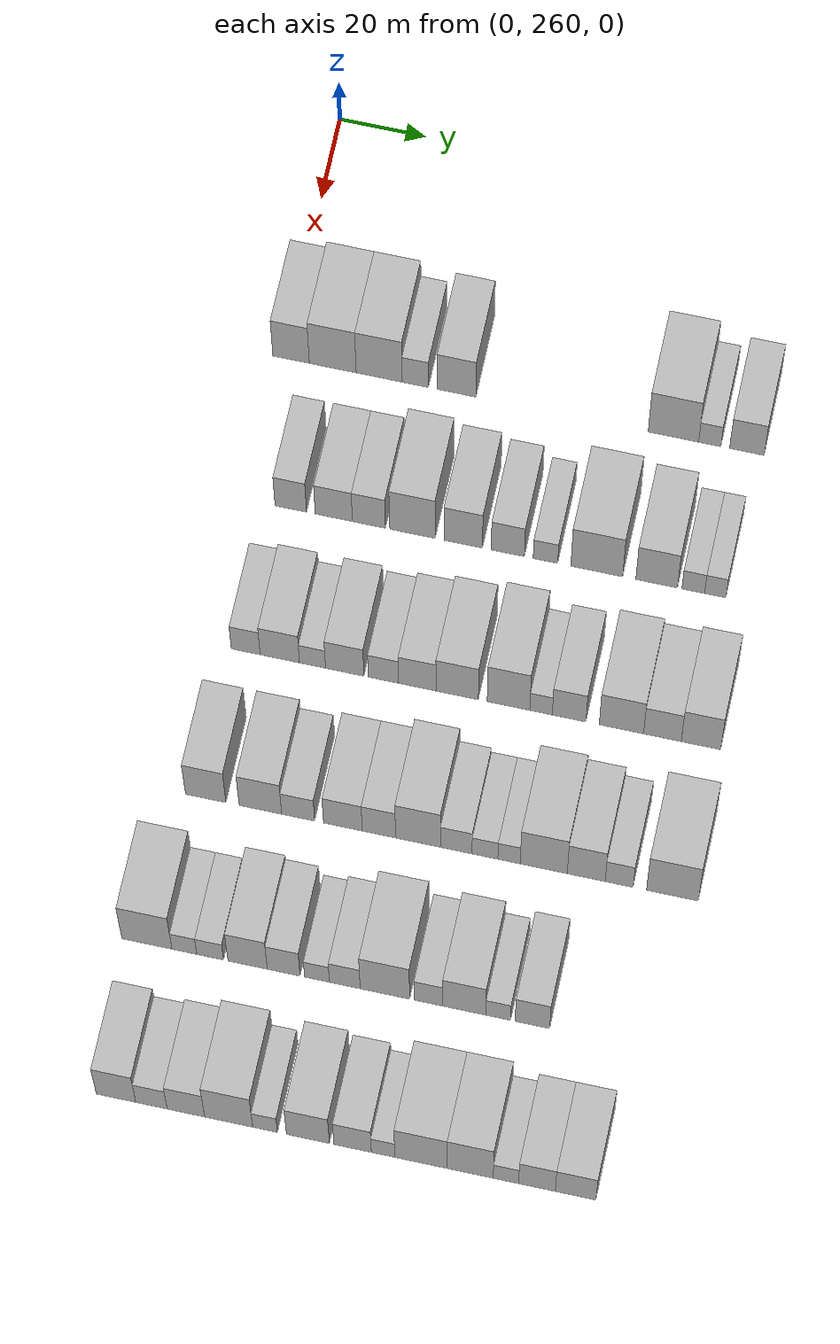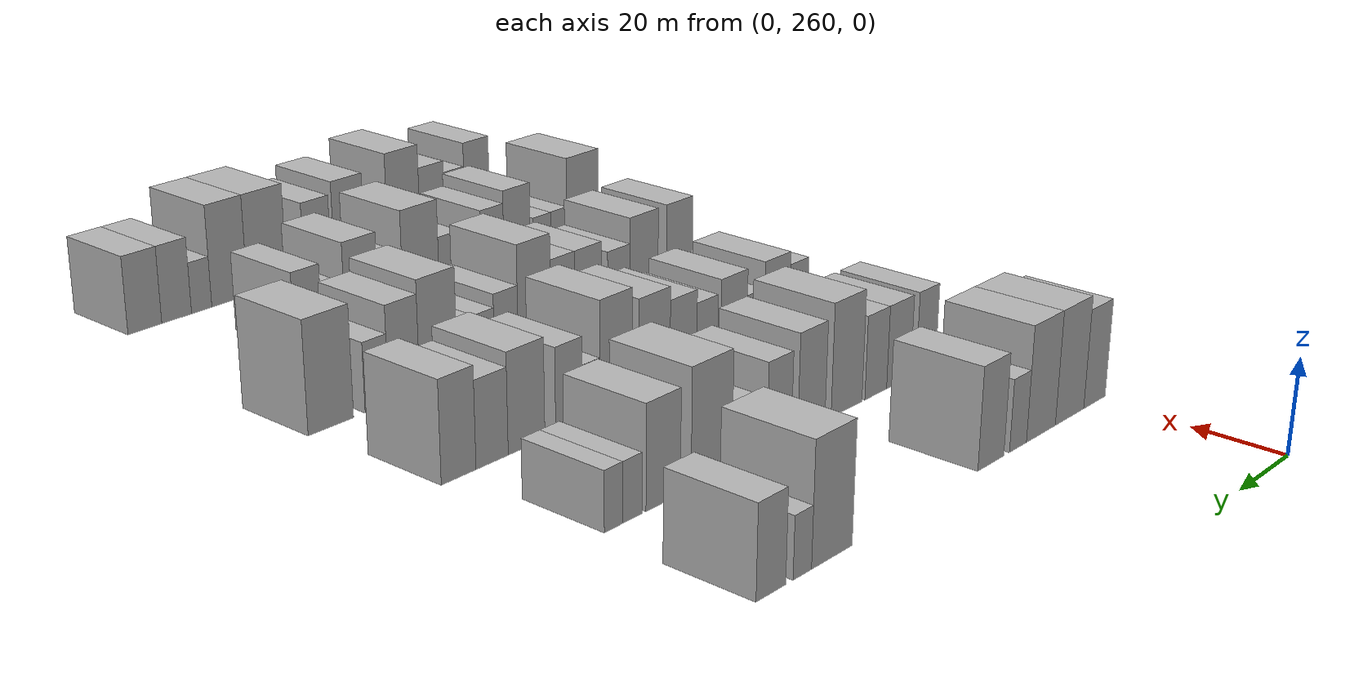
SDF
<sdf version="1.6">
 <world name="default">
  <model name="building_93">
   <static>1</static>
   <pose>50.0000 261.9925 0 0.000000 0.000000 0.000000</pose>
   <link name="link">
    <pose>0 0 10.50 0 0 0</pose>
    <collision name="collision"><geometry><box><size>20.0000 8.4311 21.0000</size></box></geometry></collision>
    <visual name="visual">
     <cast_shadows>0</cast_shadows>
     <geometry><box><size>20.0000 8.4311 21.0000</size></box></geometry>
     <material>
      <script>
       <uri>model://HANNAS_wall/materials/scripts</uri>
       <uri>model://HANNAS_wall/materials/textures</uri>
       <name>vrc/HANNAS_wall</name>
      </script>
     </material>
    </visual>
   </link>
  </model>
  <model name="building_94">
   <static>1</static>
   <pose>50.0000 271.6200 0 0.000000 0.000000 0.000000</pose>
   <link name="link">
    <pose>0 0 12.00 0 0 0</pose>
    <collision name="collision"><geometry><box><size>20.0000 10.8237 24.0000</size></box></geometry></collision>
    <visual name="visual">
     <cast_shadows>0</cast_shadows>
     <geometry><box><size>20.0000 10.8237 24.0000</size></box></geometry>
     <material>
      <script>
       <uri>model://HANNAS_wall/materials/scripts</uri>
       <uri>model://HANNAS_wall/materials/textures</uri>
       <name>vrc/HANNAS_wall</name>
      </script>
     </material>
    </visual>
   </link>
  </model>
  <model name="building_95">
   <static>1</static>
   <pose>50.0000 282.3498 0 0.000000 0.000000 0.000000</pose>
   <link name="link">
    <pose>0 0 12.00 0 0 0</pose>
    <collision name="collision"><geometry><box><size>20.0000 10.6359 24.0000</size></box></geometry></collision>
    <visual name="visual">
     <cast_shadows>0</cast_shadows>
     <geometry><box><size>20.0000 10.6359 24.0000</size></box></geometry>
     <material>
      <script>
       <uri>model://HANNAS_wall/materials/scripts</uri>
       <uri>model://HANNAS_wall/materials/textures</uri>
       <name>vrc/HANNAS_wall</name>
      </script>
     </material>
    </visual>
   </link>
  </model>
  <model name="building_96">
   <static>1</static>
   <pose>50.0000 290.6921 0 0.000000 0.000000 0.000000</pose>
   <link name="link">
    <pose>0 0 7.50 0 0 0</pose>
    <collision name="collision"><geometry><box><size>20.0000 6.0489 15.0000</size></box></geometry></collision>
    <visual name="visual">
     <cast_shadows>0</cast_shadows>
     <geometry><box><size>20.0000 6.0489 15.0000</size></box></geometry>
     <material>
      <script>
       <uri>model://HANNAS_wall/materials/scripts</uri>
       <uri>model://HANNAS_wall/materials/textures</uri>
       <name>vrc/HANNAS_wall</name>
      </script>
     </material>
    </visual>
   </link>
  </model>
  <model name="building_97">
   <static>1</static>
   <pose>50.0000 300.1921 0 0.000000 0.000000 0.000000</pose>
   <link name="link">
    <pose>0 0 10.50 0 0 0</pose>
    <collision name="collision"><geometry><box><size>20.0000 8.9510 21.0000</size></box></geometry></collision>
    <visual name="visual">
     <cast_shadows>0</cast_shadows>
     <geometry><box><size>20.0000 8.9510 21.0000</size></box></geometry>
     <material>
      <script>
       <uri>model://HANNAS_wall/materials/scripts</uri>
       <uri>model://HANNAS_wall/materials/textures</uri>
       <name>vrc/HANNAS_wall</name>
      </script>
     </material>
    </visual>
   </link>
  </model>
  <model name="building_98">
   <static>1</static>
   <pose>50.0000 350.0113 0 0.000000 0.000000 0.000000</pose>
   <link name="link">
    <pose>0 0 12.00 0 0 0</pose>
    <collision name="collision"><geometry><box><size>20.0000 11.5624 24.0000</size></box></geometry></collision>
    <visual name="visual">
     <cast_shadows>0</cast_shadows>
     <geometry><box><size>20.0000 11.5624 24.0000</size></box></geometry>
     <material>
      <script>
       <uri>model://HANNAS_wall/materials/scripts</uri>
       <uri>model://HANNAS_wall/materials/textures</uri>
       <name>vrc/HANNAS_wall</name>
      </script>
     </material>
    </visual>
   </link>
  </model>
  <model name="building_99">
   <static>1</static>
   <pose>50.0000 358.3322 0 0.000000 0.000000 0.000000</pose>
   <link name="link">
    <pose>0 0 6.00 0 0 0</pose>
    <collision name="collision"><geometry><box><size>20.0000 5.0795 12.0000</size></box></geometry></collision>
    <visual name="visual">
     <cast_shadows>0</cast_shadows>
     <geometry><box><size>20.0000 5.0795 12.0000</size></box></geometry>
     <material>
      <script>
       <uri>model://HANNAS_wall/materials/scripts</uri>
       <uri>model://HANNAS_wall/materials/textures</uri>
       <name>vrc/HANNAS_wall</name>
      </script>
     </material>
    </visual>
   </link>
  </model>
  <model name="building_100">
   <static>1</static>
   <pose>50.0000 366.8281 0 0.000000 0.000000 0.000000</pose>
   <link name="link">
    <pose>0 0 9.00 0 0 0</pose>
    <collision name="collision"><geometry><box><size>20.0000 7.9122 18.0000</size></box></geometry></collision>
    <visual name="visual">
     <cast_shadows>0</cast_shadows>
     <geometry><box><size>20.0000 7.9122 18.0000</size></box></geometry>
     <material>
      <script>
       <uri>model://HANNAS_wall/materials/scripts</uri>
       <uri>model://HANNAS_wall/materials/textures</uri>
       <name>vrc/HANNAS_wall</name>
      </script>
     </material>
    </visual>
   </link>
  </model>
  <model name="building_219">
   <static>1</static>
   <pose>85.0000 269.8615 0 0.000000 0.000000 0.000000</pose>
   <link name="link">
    <pose>0 0 9.00 0 0 0</pose>
    <collision name="collision"><geometry><box><size>20.0000 7.2115 18.0000</size></box></geometry></collision>
    <visual name="visual">
     <cast_shadows>0</cast_shadows>
     <geometry><box><size>20.0000 7.2115 18.0000</size></box></geometry>
     <material>
      <script>
       <uri>model://HANNAS_wall/materials/scripts</uri>
       <uri>model://HANNAS_wall/materials/textures</uri>
       <name>vrc/HANNAS_wall</name>
      </script>
     </material>
    </visual>
   </link>
  </model>
  <model name="building_220">
   <static>1</static>
   <pose>85.0000 279.7164 0 0.000000 0.000000 0.000000</pose>
   <link name="link">
    <pose>0 0 9.00 0 0 0</pose>
    <collision name="collision"><geometry><box><size>20.0000 8.4984 18.0000</size></box></geometry></collision>
    <visual name="visual">
     <cast_shadows>0</cast_shadows>
     <geometry><box><size>20.0000 8.4984 18.0000</size></box></geometry>
     <material>
      <script>
       <uri>model://HANNAS_wall/materials/scripts</uri>
       <uri>model://HANNAS_wall/materials/textures</uri>
       <name>vrc/HANNAS_wall</name>
      </script>
     </material>
    </visual>
   </link>
  </model>
  <model name="building_221">
   <static>1</static>
   <pose>85.0000 287.7463 0 0.000000 0.000000 0.000000</pose>
   <link name="link">
    <pose>0 0 9.00 0 0 0</pose>
    <collision name="collision"><geometry><box><size>20.0000 7.5613 18.0000</size></box></geometry></collision>
    <visual name="visual">
     <cast_shadows>0</cast_shadows>
     <geometry><box><size>20.0000 7.5613 18.0000</size></box></geometry>
     <material>
      <script>
       <uri>model://HANNAS_wall/materials/scripts</uri>
       <uri>model://HANNAS_wall/materials/textures</uri>
       <name>vrc/HANNAS_wall</name>
      </script>
     </material>
    </visual>
   </link>
  </model>
  <model name="building_222">
   <static>1</static>
   <pose>85.0000 297.7098 0 0.000000 0.000000 0.000000</pose>
   <link name="link">
    <pose>0 0 12.00 0 0 0</pose>
    <collision name="collision"><geometry><box><size>20.0000 10.3657 24.0000</size></box></geometry></collision>
    <visual name="visual">
     <cast_shadows>0</cast_shadows>
     <geometry><box><size>20.0000 10.3657 24.0000</size></box></geometry>
     <material>
      <script>
       <uri>model://HANNAS_wall/materials/scripts</uri>
       <uri>model://HANNAS_wall/materials/textures</uri>
       <name>vrc/HANNAS_wall</name>
      </script>
     </material>
    </visual>
   </link>
  </model>
  <model name="building_223">
   <static>1</static>
   <pose>85.0000 309.2843 0 0.000000 0.000000 0.000000</pose>
   <link name="link">
    <pose>0 0 10.50 0 0 0</pose>
    <collision name="collision"><geometry><box><size>20.0000 8.7832 21.0000</size></box></geometry></collision>
    <visual name="visual">
     <cast_shadows>0</cast_shadows>
     <geometry><box><size>20.0000 8.7832 21.0000</size></box></geometry>
     <material>
      <script>
       <uri>model://HANNAS_wall/materials/scripts</uri>
       <uri>model://HANNAS_wall/materials/textures</uri>
       <name>vrc/HANNAS_wall</name>
      </script>
     </material>
    </visual>
   </link>
  </model>
  <model name="building_224">
   <static>1</static>
   <pose>85.0000 319.4560 0 0.000000 0.000000 0.000000</pose>
   <link name="link">
    <pose>0 0 9.00 0 0 0</pose>
    <collision name="collision"><geometry><box><size>20.0000 7.5603 18.0000</size></box></geometry></collision>
    <visual name="visual">
     <cast_shadows>0</cast_shadows>
     <geometry><box><size>20.0000 7.5603 18.0000</size></box></geometry>
     <material>
      <script>
       <uri>model://HANNAS_wall/materials/scripts</uri>
       <uri>model://HANNAS_wall/materials/textures</uri>
       <name>vrc/HANNAS_wall</name>
      </script>
     </material>
    </visual>
   </link>
  </model>
  <model name="building_225">
   <static>1</static>
   <pose>85.0000 328.0286 0 0.000000 0.000000 0.000000</pose>
   <link name="link">
    <pose>0 0 6.00 0 0 0</pose>
    <collision name="collision"><geometry><box><size>20.0000 5.5848 12.0000</size></box></geometry></collision>
    <visual name="visual">
     <cast_shadows>0</cast_shadows>
     <geometry><box><size>20.0000 5.5848 12.0000</size></box></geometry>
     <material>
      <script>
       <uri>model://HANNAS_wall/materials/scripts</uri>
       <uri>model://HANNAS_wall/materials/textures</uri>
       <name>vrc/HANNAS_wall</name>
      </script>
     </material>
    </visual>
   </link>
  </model>
  <model name="building_226">
   <static>1</static>
   <pose>85.0000 339.7093 0 0.000000 0.000000 0.000000</pose>
   <link name="link">
    <pose>0 0 12.00 0 0 0</pose>
    <collision name="collision"><geometry><box><size>20.0000 11.7766 24.0000</size></box></geometry></collision>
    <visual name="visual">
     <cast_shadows>0</cast_shadows>
     <geometry><box><size>20.0000 11.7766 24.0000</size></box></geometry>
     <material>
      <script>
       <uri>model://HANNAS_wall/materials/scripts</uri>
       <uri>model://HANNAS_wall/materials/textures</uri>
       <name>vrc/HANNAS_wall</name>
      </script>
     </material>
    </visual>
   </link>
  </model>
  <model name="building_227">
   <static>1</static>
   <pose>85.0000 353.3235 0 0.000000 0.000000 0.000000</pose>
   <link name="link">
    <pose>0 0 10.50 0 0 0</pose>
    <collision name="collision"><geometry><box><size>20.0000 9.4518 21.0000</size></box></geometry></collision>
    <visual name="visual">
     <cast_shadows>0</cast_shadows>
     <geometry><box><size>20.0000 9.4518 21.0000</size></box></geometry>
     <material>
      <script>
       <uri>model://HANNAS_wall/materials/scripts</uri>
       <uri>model://HANNAS_wall/materials/textures</uri>
       <name>vrc/HANNAS_wall</name>
      </script>
     </material>
    </visual>
   </link>
  </model>
  <model name="building_228">
   <static>1</static>
   <pose>85.0000 361.6194 0 0.000000 0.000000 0.000000</pose>
   <link name="link">
    <pose>0 0 6.00 0 0 0</pose>
    <collision name="collision"><geometry><box><size>20.0000 5.1400 12.0000</size></box></geometry></collision>
    <visual name="visual">
     <cast_shadows>0</cast_shadows>
     <geometry><box><size>20.0000 5.1400 12.0000</size></box></geometry>
     <material>
      <script>
       <uri>model://HANNAS_wall/materials/scripts</uri>
       <uri>model://HANNAS_wall/materials/textures</uri>
       <name>vrc/HANNAS_wall</name>
      </script>
     </material>
    </visual>
   </link>
  </model>
  <model name="building_229">
   <static>1</static>
   <pose>85.0000 366.6081 0 0.000000 0.000000 0.000000</pose>
   <link name="link">
    <pose>0 0 6.00 0 0 0</pose>
    <collision name="collision"><geometry><box><size>20.0000 4.8375 12.0000</size></box></geometry></collision>
    <visual name="visual">
     <cast_shadows>0</cast_shadows>
     <geometry><box><size>20.0000 4.8375 12.0000</size></box></geometry>
     <material>
      <script>
       <uri>model://HANNAS_wall/materials/scripts</uri>
       <uri>model://HANNAS_wall/materials/textures</uri>
       <name>vrc/HANNAS_wall</name>
      </script>
     </material>
    </visual>
   </link>
  </model>
  <model name="building_349">
   <static>1</static>
   <pose>120.0000 267.5723 0 0.000000 0.000000 0.000000</pose>
   <link name="link">
    <pose>0 0 7.50 0 0 0</pose>
    <collision name="collision"><geometry><box><size>20.0000 6.5489 15.0000</size></box></geometry></collision>
    <visual name="visual">
     <cast_shadows>0</cast_shadows>
     <geometry><box><size>20.0000 6.5489 15.0000</size></box></geometry>
     <material>
      <script>
       <uri>model://HANNAS_wall/materials/scripts</uri>
       <uri>model://HANNAS_wall/materials/textures</uri>
       <name>vrc/HANNAS_wall</name>
      </script>
     </material>
    </visual>
   </link>
  </model>
  <model name="building_350">
   <static>1</static>
   <pose>120.0000 275.3120 0 0.000000 0.000000 0.000000</pose>
   <link name="link">
    <pose>0 0 9.00 0 0 0</pose>
    <collision name="collision"><geometry><box><size>20.0000 8.9306 18.0000</size></box></geometry></collision>
    <visual name="visual">
     <cast_shadows>0</cast_shadows>
     <geometry><box><size>20.0000 8.9306 18.0000</size></box></geometry>
     <material>
      <script>
       <uri>model://HANNAS_wall/materials/scripts</uri>
       <uri>model://HANNAS_wall/materials/textures</uri>
       <name>vrc/HANNAS_wall</name>
      </script>
     </material>
    </visual>
   </link>
  </model>
  <model name="building_351">
   <static>1</static>
   <pose>120.0000 282.7285 0 0.000000 0.000000 0.000000</pose>
   <link name="link">
    <pose>0 0 6.00 0 0 0</pose>
    <collision name="collision"><geometry><box><size>20.0000 5.9024 12.0000</size></box></geometry></collision>
    <visual name="visual">
     <cast_shadows>0</cast_shadows>
     <geometry><box><size>20.0000 5.9024 12.0000</size></box></geometry>
     <material>
      <script>
       <uri>model://HANNAS_wall/materials/scripts</uri>
       <uri>model://HANNAS_wall/materials/textures</uri>
       <name>vrc/HANNAS_wall</name>
      </script>
     </material>
    </visual>
   </link>
  </model>
  <model name="building_352">
   <static>1</static>
   <pose>120.0000 290.0316 0 0.000000 0.000000 0.000000</pose>
   <link name="link">
    <pose>0 0 9.00 0 0 0</pose>
    <collision name="collision"><geometry><box><size>20.0000 8.7038 18.0000</size></box></geometry></collision>
    <visual name="visual">
     <cast_shadows>0</cast_shadows>
     <geometry><box><size>20.0000 8.7038 18.0000</size></box></geometry>
     <material>
      <script>
       <uri>model://HANNAS_wall/materials/scripts</uri>
       <uri>model://HANNAS_wall/materials/textures</uri>
       <name>vrc/HANNAS_wall</name>
      </script>
     </material>
    </visual>
   </link>
  </model>
  <model name="building_353">
   <static>1</static>
   <pose>120.0000 298.8179 0 0.000000 0.000000 0.000000</pose>
   <link name="link">
    <pose>0 0 7.50 0 0 0</pose>
    <collision name="collision"><geometry><box><size>20.0000 6.8687 15.0000</size></box></geometry></collision>
    <visual name="visual">
     <cast_shadows>0</cast_shadows>
     <geometry><box><size>20.0000 6.8687 15.0000</size></box></geometry>
     <material>
      <script>
       <uri>model://HANNAS_wall/materials/scripts</uri>
       <uri>model://HANNAS_wall/materials/textures</uri>
       <name>vrc/HANNAS_wall</name>
      </script>
     </material>
    </visual>
   </link>
  </model>
  <model name="building_354">
   <static>1</static>
   <pose>120.0000 306.4790 0 0.000000 0.000000 0.000000</pose>
   <link name="link">
    <pose>0 0 9.00 0 0 0</pose>
    <collision name="collision"><geometry><box><size>20.0000 8.4534 18.0000</size></box></geometry></collision>
    <visual name="visual">
     <cast_shadows>0</cast_shadows>
     <geometry><box><size>20.0000 8.4534 18.0000</size></box></geometry>
     <material>
      <script>
       <uri>model://HANNAS_wall/materials/scripts</uri>
       <uri>model://HANNAS_wall/materials/textures</uri>
       <name>vrc/HANNAS_wall</name>
      </script>
     </material>
    </visual>
   </link>
  </model>
  <model name="building_355">
   <static>1</static>
   <pose>120.0000 315.4855 0 0.000000 0.000000 0.000000</pose>
   <link name="link">
    <pose>0 0 10.50 0 0 0</pose>
    <collision name="collision"><geometry><box><size>20.0000 9.5598 21.0000</size></box></geometry></collision>
    <visual name="visual">
     <cast_shadows>0</cast_shadows>
     <geometry><box><size>20.0000 9.5598 21.0000</size></box></geometry>
     <material>
      <script>
       <uri>model://HANNAS_wall/materials/scripts</uri>
       <uri>model://HANNAS_wall/materials/textures</uri>
       <name>vrc/HANNAS_wall</name>
      </script>
     </material>
    </visual>
   </link>
  </model>
  <model name="building_356">
   <static>1</static>
   <pose>120.0000 327.0725 0 0.000000 0.000000 0.000000</pose>
   <link name="link">
    <pose>0 0 12.00 0 0 0</pose>
    <collision name="collision"><geometry><box><size>20.0000 9.6141 24.0000</size></box></geometry></collision>
    <visual name="visual">
     <cast_shadows>0</cast_shadows>
     <geometry><box><size>20.0000 9.6141 24.0000</size></box></geometry>
     <material>
      <script>
       <uri>model://HANNAS_wall/materials/scripts</uri>
       <uri>model://HANNAS_wall/materials/textures</uri>
       <name>vrc/HANNAS_wall</name>
      </script>
     </material>
    </visual>
   </link>
  </model>
  <model name="building_357">
   <static>1</static>
   <pose>120.0000 334.4189 0 0.000000 0.000000 0.000000</pose>
   <link name="link">
    <pose>0 0 6.00 0 0 0</pose>
    <collision name="collision"><geometry><box><size>20.0000 5.0789 12.0000</size></box></geometry></collision>
    <visual name="visual">
     <cast_shadows>0</cast_shadows>
     <geometry><box><size>20.0000 5.0789 12.0000</size></box></geometry>
     <material>
      <script>
       <uri>model://HANNAS_wall/materials/scripts</uri>
       <uri>model://HANNAS_wall/materials/textures</uri>
       <name>vrc/HANNAS_wall</name>
      </script>
     </material>
    </visual>
   </link>
  </model>
  <model name="building_358">
   <static>1</static>
   <pose>120.0000 340.7542 0 0.000000 0.000000 0.000000</pose>
   <link name="link">
    <pose>0 0 9.00 0 0 0</pose>
    <collision name="collision"><geometry><box><size>20.0000 7.5917 18.0000</size></box></geometry></collision>
    <visual name="visual">
     <cast_shadows>0</cast_shadows>
     <geometry><box><size>20.0000 7.5917 18.0000</size></box></geometry>
     <material>
      <script>
       <uri>model://HANNAS_wall/materials/scripts</uri>
       <uri>model://HANNAS_wall/materials/textures</uri>
       <name>vrc/HANNAS_wall</name>
      </script>
     </material>
    </visual>
   </link>
  </model>
  <model name="building_359">
   <static>1</static>
   <pose>120.0000 352.5350 0 0.000000 0.000000 0.000000</pose>
   <link name="link">
    <pose>0 0 10.50 0 0 0</pose>
    <collision name="collision"><geometry><box><size>20.0000 9.9700 21.0000</size></box></geometry></collision>
    <visual name="visual">
     <cast_shadows>0</cast_shadows>
     <geometry><box><size>20.0000 9.9700 21.0000</size></box></geometry>
     <material>
      <script>
       <uri>model://HANNAS_wall/materials/scripts</uri>
       <uri>model://HANNAS_wall/materials/textures</uri>
       <name>vrc/HANNAS_wall</name>
      </script>
     </material>
    </visual>
   </link>
  </model>
  <model name="building_360">
   <static>1</static>
   <pose>120.0000 361.7542 0 0.000000 0.000000 0.000000</pose>
   <link name="link">
    <pose>0 0 9.00 0 0 0</pose>
    <collision name="collision"><geometry><box><size>20.0000 8.4683 18.0000</size></box></geometry></collision>
    <visual name="visual">
     <cast_shadows>0</cast_shadows>
     <geometry><box><size>20.0000 8.4683 18.0000</size></box></geometry>
     <material>
      <script>
       <uri>model://HANNAS_wall/materials/scripts</uri>
       <uri>model://HANNAS_wall/materials/textures</uri>
       <name>vrc/HANNAS_wall</name>
      </script>
     </material>
    </visual>
   </link>
  </model>
  <model name="building_361">
   <static>1</static>
   <pose>120.0000 370.4192 0 0.000000 0.000000 0.000000</pose>
   <link name="link">
    <pose>0 0 10.50 0 0 0</pose>
    <collision name="collision"><geometry><box><size>20.0000 8.8615 21.0000</size></box></geometry></collision>
    <visual name="visual">
     <cast_shadows>0</cast_shadows>
     <geometry><box><size>20.0000 8.8615 21.0000</size></box></geometry>
     <material>
      <script>
       <uri>model://HANNAS_wall/materials/scripts</uri>
       <uri>model://HANNAS_wall/materials/textures</uri>
       <name>vrc/HANNAS_wall</name>
      </script>
     </material>
    </visual>
   </link>
  </model>
  <model name="building_473">
   <static>1</static>
   <pose>155.0000 266.5804 0 0.000000 0.000000 0.000000</pose>
   <link name="link">
    <pose>0 0 10.50 0 0 0</pose>
    <collision name="collision"><geometry><box><size>20.0000 9.1056 21.0000</size></box></geometry></collision>
    <visual name="visual">
     <cast_shadows>0</cast_shadows>
     <geometry><box><size>20.0000 9.1056 21.0000</size></box></geometry>
     <material>
      <script>
       <uri>model://HANNAS_wall/materials/scripts</uri>
       <uri>model://HANNAS_wall/materials/textures</uri>
       <name>vrc/HANNAS_wall</name>
      </script>
     </material>
    </visual>
   </link>
  </model>
  <model name="building_474">
   <static>1</static>
   <pose>155.0000 278.9057 0 0.000000 0.000000 0.000000</pose>
   <link name="link">
    <pose>0 0 10.50 0 0 0</pose>
    <collision name="collision"><geometry><box><size>20.0000 9.5451 21.0000</size></box></geometry></collision>
    <visual name="visual">
     <cast_shadows>0</cast_shadows>
     <geometry><box><size>20.0000 9.5451 21.0000</size></box></geometry>
     <material>
      <script>
       <uri>model://HANNAS_wall/materials/scripts</uri>
       <uri>model://HANNAS_wall/materials/textures</uri>
       <name>vrc/HANNAS_wall</name>
      </script>
     </material>
    </visual>
   </link>
  </model>
  <model name="building_475">
   <static>1</static>
   <pose>155.0000 287.3865 0 0.000000 0.000000 0.000000</pose>
   <link name="link">
    <pose>0 0 7.50 0 0 0</pose>
    <collision name="collision"><geometry><box><size>20.0000 7.4165 15.0000</size></box></geometry></collision>
    <visual name="visual">
     <cast_shadows>0</cast_shadows>
     <geometry><box><size>20.0000 7.4165 15.0000</size></box></geometry>
     <material>
      <script>
       <uri>model://HANNAS_wall/materials/scripts</uri>
       <uri>model://HANNAS_wall/materials/textures</uri>
       <name>vrc/HANNAS_wall</name>
      </script>
     </material>
    </visual>
   </link>
  </model>
  <model name="building_476">
   <static>1</static>
   <pose>155.0000 297.4333 0 0.000000 0.000000 0.000000</pose>
   <link name="link">
    <pose>0 0 9.00 0 0 0</pose>
    <collision name="collision"><geometry><box><size>20.0000 8.6769 18.0000</size></box></geometry></collision>
    <visual name="visual">
     <cast_shadows>0</cast_shadows>
     <geometry><box><size>20.0000 8.6769 18.0000</size></box></geometry>
     <material>
      <script>
       <uri>model://HANNAS_wall/materials/scripts</uri>
       <uri>model://HANNAS_wall/materials/textures</uri>
       <name>vrc/HANNAS_wall</name>
      </script>
     </material>
    </visual>
   </link>
  </model>
  <model name="building_477">
   <static>1</static>
   <pose>155.0000 305.5240 0 0.000000 0.000000 0.000000</pose>
   <link name="link">
    <pose>0 0 9.00 0 0 0</pose>
    <collision name="collision"><geometry><box><size>20.0000 7.5045 18.0000</size></box></geometry></collision>
    <visual name="visual">
     <cast_shadows>0</cast_shadows>
     <geometry><box><size>20.0000 7.5045 18.0000</size></box></geometry>
     <material>
      <script>
       <uri>model://HANNAS_wall/materials/scripts</uri>
       <uri>model://HANNAS_wall/materials/textures</uri>
       <name>vrc/HANNAS_wall</name>
      </script>
     </material>
    </visual>
   </link>
  </model>
  <model name="building_478">
   <static>1</static>
   <pose>155.0000 314.2986 0 0.000000 0.000000 0.000000</pose>
   <link name="link">
    <pose>0 0 12.00 0 0 0</pose>
    <collision name="collision"><geometry><box><size>20.0000 10.0447 24.0000</size></box></geometry></collision>
    <visual name="visual">
     <cast_shadows>0</cast_shadows>
     <geometry><box><size>20.0000 10.0447 24.0000</size></box></geometry>
     <material>
      <script>
       <uri>model://HANNAS_wall/materials/scripts</uri>
       <uri>model://HANNAS_wall/materials/textures</uri>
       <name>vrc/HANNAS_wall</name>
      </script>
     </material>
    </visual>
   </link>
  </model>
  <model name="building_479">
   <static>1</static>
   <pose>155.0000 322.8557 0 0.000000 0.000000 0.000000</pose>
   <link name="link">
    <pose>0 0 7.50 0 0 0</pose>
    <collision name="collision"><geometry><box><size>20.0000 7.0695 15.0000</size></box></geometry></collision>
    <visual name="visual">
     <cast_shadows>0</cast_shadows>
     <geometry><box><size>20.0000 7.0695 15.0000</size></box></geometry>
     <material>
      <script>
       <uri>model://HANNAS_wall/materials/scripts</uri>
       <uri>model://HANNAS_wall/materials/textures</uri>
       <name>vrc/HANNAS_wall</name>
      </script>
     </material>
    </visual>
   </link>
  </model>
  <model name="building_480">
   <static>1</static>
   <pose>155.0000 329.2763 0 0.000000 0.000000 0.000000</pose>
   <link name="link">
    <pose>0 0 6.00 0 0 0</pose>
    <collision name="collision"><geometry><box><size>20.0000 5.7718 12.0000</size></box></geometry></collision>
    <visual name="visual">
     <cast_shadows>0</cast_shadows>
     <geometry><box><size>20.0000 5.7718 12.0000</size></box></geometry>
     <material>
      <script>
       <uri>model://HANNAS_wall/materials/scripts</uri>
       <uri>model://HANNAS_wall/materials/textures</uri>
       <name>vrc/HANNAS_wall</name>
      </script>
     </material>
    </visual>
   </link>
  </model>
  <model name="building_481">
   <static>1</static>
   <pose>155.0000 334.6573 0 0.000000 0.000000 0.000000</pose>
   <link name="link">
    <pose>0 0 6.00 0 0 0</pose>
    <collision name="collision"><geometry><box><size>20.0000 4.9902 12.0000</size></box></geometry></collision>
    <visual name="visual">
     <cast_shadows>0</cast_shadows>
     <geometry><box><size>20.0000 4.9902 12.0000</size></box></geometry>
     <material>
      <script>
       <uri>model://HANNAS_wall/materials/scripts</uri>
       <uri>model://HANNAS_wall/materials/textures</uri>
       <name>vrc/HANNAS_wall</name>
      </script>
     </material>
    </visual>
   </link>
  </model>
  <model name="building_482">
   <static>1</static>
   <pose>155.0000 342.4120 0 0.000000 0.000000 0.000000</pose>
   <link name="link">
    <pose>0 0 12.00 0 0 0</pose>
    <collision name="collision"><geometry><box><size>20.0000 10.5192 24.0000</size></box></geometry></collision>
    <visual name="visual">
     <cast_shadows>0</cast_shadows>
     <geometry><box><size>20.0000 10.5192 24.0000</size></box></geometry>
     <material>
      <script>
       <uri>model://HANNAS_wall/materials/scripts</uri>
       <uri>model://HANNAS_wall/materials/textures</uri>
       <name>vrc/HANNAS_wall</name>
      </script>
     </material>
    </visual>
   </link>
  </model>
  <model name="building_483">
   <static>1</static>
   <pose>155.0000 351.9006 0 0.000000 0.000000 0.000000</pose>
   <link name="link">
    <pose>0 0 10.50 0 0 0</pose>
    <collision name="collision"><geometry><box><size>20.0000 8.4579 21.0000</size></box></geometry></collision>
    <visual name="visual">
     <cast_shadows>0</cast_shadows>
     <geometry><box><size>20.0000 8.4579 21.0000</size></box></geometry>
     <material>
      <script>
       <uri>model://HANNAS_wall/materials/scripts</uri>
       <uri>model://HANNAS_wall/materials/textures</uri>
       <name>vrc/HANNAS_wall</name>
      </script>
     </material>
    </visual>
   </link>
  </model>
  <model name="building_484">
   <static>1</static>
   <pose>155.0000 359.2466 0 0.000000 0.000000 0.000000</pose>
   <link name="link">
    <pose>0 0 7.50 0 0 0</pose>
    <collision name="collision"><geometry><box><size>20.0000 6.2342 15.0000</size></box></geometry></collision>
    <visual name="visual">
     <cast_shadows>0</cast_shadows>
     <geometry><box><size>20.0000 6.2342 15.0000</size></box></geometry>
     <material>
      <script>
       <uri>model://HANNAS_wall/materials/scripts</uri>
       <uri>model://HANNAS_wall/materials/textures</uri>
       <name>vrc/HANNAS_wall</name>
      </script>
     </material>
    </visual>
   </link>
  </model>
  <model name="building_485">
   <static>1</static>
   <pose>155.0000 371.1327 0 0.000000 0.000000 0.000000</pose>
   <link name="link">
    <pose>0 0 12.00 0 0 0</pose>
    <collision name="collision"><geometry><box><size>20.0000 11.5379 24.0000</size></box></geometry></collision>
    <visual name="visual">
     <cast_shadows>0</cast_shadows>
     <geometry><box><size>20.0000 11.5379 24.0000</size></box></geometry>
     <material>
      <script>
       <uri>model://HANNAS_wall/materials/scripts</uri>
       <uri>model://HANNAS_wall/materials/textures</uri>
       <name>vrc/HANNAS_wall</name>
      </script>
     </material>
    </visual>
   </link>
  </model>
  <model name="building_604">
   <static>1</static>
   <pose>190.0000 261.5580 0 0.000000 0.000000 0.000000</pose>
   <link name="link">
    <pose>0 0 12.00 0 0 0</pose>
    <collision name="collision"><geometry><box><size>20.0000 11.1774 24.0000</size></box></geometry></collision>
    <visual name="visual">
     <cast_shadows>0</cast_shadows>
     <geometry><box><size>20.0000 11.1774 24.0000</size></box></geometry>
     <material>
      <script>
       <uri>model://HANNAS_wall/materials/scripts</uri>
       <uri>model://HANNAS_wall/materials/textures</uri>
       <name>vrc/HANNAS_wall</name>
      </script>
     </material>
    </visual>
   </link>
  </model>
  <model name="building_605">
   <static>1</static>
   <pose>190.0000 269.9271 0 0.000000 0.000000 0.000000</pose>
   <link name="link">
    <pose>0 0 6.00 0 0 0</pose>
    <collision name="collision"><geometry><box><size>20.0000 5.5608 12.0000</size></box></geometry></collision>
    <visual name="visual">
     <cast_shadows>0</cast_shadows>
     <geometry><box><size>20.0000 5.5608 12.0000</size></box></geometry>
     <material>
      <script>
       <uri>model://HANNAS_wall/materials/scripts</uri>
       <uri>model://HANNAS_wall/materials/textures</uri>
       <name>vrc/HANNAS_wall</name>
      </script>
     </material>
    </visual>
   </link>
  </model>
  <model name="building_606">
   <static>1</static>
   <pose>190.0000 275.6882 0 0.000000 0.000000 0.000000</pose>
   <link name="link">
    <pose>0 0 6.00 0 0 0</pose>
    <collision name="collision"><geometry><box><size>20.0000 5.9613 12.0000</size></box></geometry></collision>
    <visual name="visual">
     <cast_shadows>0</cast_shadows>
     <geometry><box><size>20.0000 5.9613 12.0000</size></box></geometry>
     <material>
      <script>
       <uri>model://HANNAS_wall/materials/scripts</uri>
       <uri>model://HANNAS_wall/materials/textures</uri>
       <name>vrc/HANNAS_wall</name>
      </script>
     </material>
    </visual>
   </link>
  </model>
  <model name="building_607">
   <static>1</static>
   <pose>190.0000 284.0533 0 0.000000 0.000000 0.000000</pose>
   <link name="link">
    <pose>0 0 10.50 0 0 0</pose>
    <collision name="collision"><geometry><box><size>20.0000 8.7688 21.0000</size></box></geometry></collision>
    <visual name="visual">
     <cast_shadows>0</cast_shadows>
     <geometry><box><size>20.0000 8.7688 21.0000</size></box></geometry>
     <material>
      <script>
       <uri>model://HANNAS_wall/materials/scripts</uri>
       <uri>model://HANNAS_wall/materials/textures</uri>
       <name>vrc/HANNAS_wall</name>
      </script>
     </material>
    </visual>
   </link>
  </model>
  <model name="building_608">
   <static>1</static>
   <pose>190.0000 292.0874 0 0.000000 0.000000 0.000000</pose>
   <link name="link">
    <pose>0 0 9.00 0 0 0</pose>
    <collision name="collision"><geometry><box><size>20.0000 7.2996 18.0000</size></box></geometry></collision>
    <visual name="visual">
     <cast_shadows>0</cast_shadows>
     <geometry><box><size>20.0000 7.2996 18.0000</size></box></geometry>
     <material>
      <script>
       <uri>model://HANNAS_wall/materials/scripts</uri>
       <uri>model://HANNAS_wall/materials/textures</uri>
       <name>vrc/HANNAS_wall</name>
      </script>
     </material>
    </visual>
   </link>
  </model>
  <model name="building_609">
   <static>1</static>
   <pose>190.0000 299.5074 0 0.000000 0.000000 0.000000</pose>
   <link name="link">
    <pose>0 0 6.00 0 0 0</pose>
    <collision name="collision"><geometry><box><size>20.0000 5.5404 12.0000</size></box></geometry></collision>
    <visual name="visual">
     <cast_shadows>0</cast_shadows>
     <geometry><box><size>20.0000 5.5404 12.0000</size></box></geometry>
     <material>
      <script>
       <uri>model://HANNAS_wall/materials/scripts</uri>
       <uri>model://HANNAS_wall/materials/textures</uri>
       <name>vrc/HANNAS_wall</name>
      </script>
     </material>
    </visual>
   </link>
  </model>
  <model name="building_610">
   <static>1</static>
   <pose>190.0000 305.6907 0 0.000000 0.000000 0.000000</pose>
   <link name="link">
    <pose>0 0 7.50 0 0 0</pose>
    <collision name="collision"><geometry><box><size>20.0000 6.8262 15.0000</size></box></geometry></collision>
    <visual name="visual">
     <cast_shadows>0</cast_shadows>
     <geometry><box><size>20.0000 6.8262 15.0000</size></box></geometry>
     <material>
      <script>
       <uri>model://HANNAS_wall/materials/scripts</uri>
       <uri>model://HANNAS_wall/materials/textures</uri>
       <name>vrc/HANNAS_wall</name>
      </script>
     </material>
    </visual>
   </link>
  </model>
  <model name="building_611">
   <static>1</static>
   <pose>190.0000 314.6040 0 0.000000 0.000000 0.000000</pose>
   <link name="link">
    <pose>0 0 12.00 0 0 0</pose>
    <collision name="collision"><geometry><box><size>20.0000 11.0004 24.0000</size></box></geometry></collision>
    <visual name="visual">
     <cast_shadows>0</cast_shadows>
     <geometry><box><size>20.0000 11.0004 24.0000</size></box></geometry>
     <material>
      <script>
       <uri>model://HANNAS_wall/materials/scripts</uri>
       <uri>model://HANNAS_wall/materials/textures</uri>
       <name>vrc/HANNAS_wall</name>
      </script>
     </material>
    </visual>
   </link>
  </model>
  <model name="building_612">
   <static>1</static>
   <pose>190.0000 324.2721 0 0.000000 0.000000 0.000000</pose>
   <link name="link">
    <pose>0 0 7.50 0 0 0</pose>
    <collision name="collision"><geometry><box><size>20.0000 6.3357 15.0000</size></box></geometry></collision>
    <visual name="visual">
     <cast_shadows>0</cast_shadows>
     <geometry><box><size>20.0000 6.3357 15.0000</size></box></geometry>
     <material>
      <script>
       <uri>model://HANNAS_wall/materials/scripts</uri>
       <uri>model://HANNAS_wall/materials/textures</uri>
       <name>vrc/HANNAS_wall</name>
      </script>
     </material>
    </visual>
   </link>
  </model>
  <model name="building_613">
   <static>1</static>
   <pose>190.0000 332.2111 0 0.000000 0.000000 0.000000</pose>
   <link name="link">
    <pose>0 0 10.50 0 0 0</pose>
    <collision name="collision"><geometry><box><size>20.0000 9.5423 21.0000</size></box></geometry></collision>
    <visual name="visual">
     <cast_shadows>0</cast_shadows>
     <geometry><box><size>20.0000 9.5423 21.0000</size></box></geometry>
     <material>
      <script>
       <uri>model://HANNAS_wall/materials/scripts</uri>
       <uri>model://HANNAS_wall/materials/textures</uri>
       <name>vrc/HANNAS_wall</name>
      </script>
     </material>
    </visual>
   </link>
  </model>
  <model name="building_614">
   <static>1</static>
   <pose>190.0000 339.7337 0 0.000000 0.000000 0.000000</pose>
   <link name="link">
    <pose>0 0 6.00 0 0 0</pose>
    <collision name="collision"><geometry><box><size>20.0000 5.5028 12.0000</size></box></geometry></collision>
    <visual name="visual">
     <cast_shadows>0</cast_shadows>
     <geometry><box><size>20.0000 5.5028 12.0000</size></box></geometry>
     <material>
      <script>
       <uri>model://HANNAS_wall/materials/scripts</uri>
       <uri>model://HANNAS_wall/materials/textures</uri>
       <name>vrc/HANNAS_wall</name>
      </script>
     </material>
    </visual>
   </link>
  </model>
  <model name="building_615">
   <static>1</static>
   <pose>190.0000 347.3090 0 0.000000 0.000000 0.000000</pose>
   <link name="link">
    <pose>0 0 9.00 0 0 0</pose>
    <collision name="collision"><geometry><box><size>20.0000 7.6479 18.0000</size></box></geometry></collision>
    <visual name="visual">
     <cast_shadows>0</cast_shadows>
     <geometry><box><size>20.0000 7.6479 18.0000</size></box></geometry>
     <material>
      <script>
       <uri>model://HANNAS_wall/materials/scripts</uri>
       <uri>model://HANNAS_wall/materials/textures</uri>
       <name>vrc/HANNAS_wall</name>
      </script>
     </material>
    </visual>
   </link>
  </model>
  <model name="building_736">
   <static>1</static>
   <pose>225.0000 262.9844 0 0.000000 0.000000 0.000000</pose>
   <link name="link">
    <pose>0 0 10.50 0 0 0</pose>
    <collision name="collision"><geometry><box><size>20.0000 8.7448 21.0000</size></box></geometry></collision>
    <visual name="visual">
     <cast_shadows>0</cast_shadows>
     <geometry><box><size>20.0000 8.7448 21.0000</size></box></geometry>
     <material>
      <script>
       <uri>model://HANNAS_wall/materials/scripts</uri>
       <uri>model://HANNAS_wall/materials/textures</uri>
       <name>vrc/HANNAS_wall</name>
      </script>
     </material>
    </visual>
   </link>
  </model>
  <model name="building_737">
   <static>1</static>
   <pose>225.0000 270.8231 0 0.000000 0.000000 0.000000</pose>
   <link name="link">
    <pose>0 0 7.50 0 0 0</pose>
    <collision name="collision"><geometry><box><size>20.0000 6.9325 15.0000</size></box></geometry></collision>
    <visual name="visual">
     <cast_shadows>0</cast_shadows>
     <geometry><box><size>20.0000 6.9325 15.0000</size></box></geometry>
     <material>
      <script>
       <uri>model://HANNAS_wall/materials/scripts</uri>
       <uri>model://HANNAS_wall/materials/textures</uri>
       <name>vrc/HANNAS_wall</name>
      </script>
     </material>
    </visual>
   </link>
  </model>
  <model name="building_738">
   <static>1</static>
   <pose>225.0000 278.4280 0 0.000000 0.000000 0.000000</pose>
   <link name="link">
    <pose>0 0 9.00 0 0 0</pose>
    <collision name="collision"><geometry><box><size>20.0000 8.2775 18.0000</size></box></geometry></collision>
    <visual name="visual">
     <cast_shadows>0</cast_shadows>
     <geometry><box><size>20.0000 8.2775 18.0000</size></box></geometry>
     <material>
      <script>
       <uri>model://HANNAS_wall/materials/scripts</uri>
       <uri>model://HANNAS_wall/materials/textures</uri>
       <name>vrc/HANNAS_wall</name>
      </script>
     </material>
    </visual>
   </link>
  </model>
  <model name="building_739">
   <static>1</static>
   <pose>225.0000 287.8837 0 0.000000 0.000000 0.000000</pose>
   <link name="link">
    <pose>0 0 12.00 0 0 0</pose>
    <collision name="collision"><geometry><box><size>20.0000 10.6339 24.0000</size></box></geometry></collision>
    <visual name="visual">
     <cast_shadows>0</cast_shadows>
     <geometry><box><size>20.0000 10.6339 24.0000</size></box></geometry>
     <material>
      <script>
       <uri>model://HANNAS_wall/materials/scripts</uri>
       <uri>model://HANNAS_wall/materials/textures</uri>
       <name>vrc/HANNAS_wall</name>
      </script>
     </material>
    </visual>
   </link>
  </model>
  <model name="building_740">
   <static>1</static>
   <pose>225.0000 295.9281 0 0.000000 0.000000 0.000000</pose>
   <link name="link">
    <pose>0 0 6.00 0 0 0</pose>
    <collision name="collision"><geometry><box><size>20.0000 5.4550 12.0000</size></box></geometry></collision>
    <visual name="visual">
     <cast_shadows>0</cast_shadows>
     <geometry><box><size>20.0000 5.4550 12.0000</size></box></geometry>
     <material>
      <script>
       <uri>model://HANNAS_wall/materials/scripts</uri>
       <uri>model://HANNAS_wall/materials/textures</uri>
       <name>vrc/HANNAS_wall</name>
      </script>
     </material>
    </visual>
   </link>
  </model>
  <model name="building_741">
   <static>1</static>
   <pose>225.0000 305.3880 0 0.000000 0.000000 0.000000</pose>
   <link name="link">
    <pose>0 0 10.50 0 0 0</pose>
    <collision name="collision"><geometry><box><size>20.0000 9.4648 21.0000</size></box></geometry></collision>
    <visual name="visual">
     <cast_shadows>0</cast_shadows>
     <geometry><box><size>20.0000 9.4648 21.0000</size></box></geometry>
     <material>
      <script>
       <uri>model://HANNAS_wall/materials/scripts</uri>
       <uri>model://HANNAS_wall/materials/textures</uri>
       <name>vrc/HANNAS_wall</name>
      </script>
     </material>
    </visual>
   </link>
  </model>
  <model name="building_742">
   <static>1</static>
   <pose>225.0000 315.2329 0 0.000000 0.000000 0.000000</pose>
   <link name="link">
    <pose>0 0 9.00 0 0 0</pose>
    <collision name="collision"><geometry><box><size>20.0000 8.2251 18.0000</size></box></geometry></collision>
    <visual name="visual">
     <cast_shadows>0</cast_shadows>
     <geometry><box><size>20.0000 8.2251 18.0000</size></box></geometry>
     <material>
      <script>
       <uri>model://HANNAS_wall/materials/scripts</uri>
       <uri>model://HANNAS_wall/materials/textures</uri>
       <name>vrc/HANNAS_wall</name>
      </script>
     </material>
    </visual>
   </link>
  </model>
  <model name="building_743">
   <static>1</static>
   <pose>225.0000 321.9297 0 0.000000 0.000000 0.000000</pose>
   <link name="link">
    <pose>0 0 6.00 0 0 0</pose>
    <collision name="collision"><geometry><box><size>20.0000 5.1685 12.0000</size></box></geometry></collision>
    <visual name="visual">
     <cast_shadows>0</cast_shadows>
     <geometry><box><size>20.0000 5.1685 12.0000</size></box></geometry>
     <material>
      <script>
       <uri>model://HANNAS_wall/materials/scripts</uri>
       <uri>model://HANNAS_wall/materials/textures</uri>
       <name>vrc/HANNAS_wall</name>
      </script>
     </material>
    </visual>
   </link>
  </model>
  <model name="building_744">
   <static>1</static>
   <pose>225.0000 330.2642 0 0.000000 0.000000 0.000000</pose>
   <link name="link">
    <pose>0 0 12.00 0 0 0</pose>
    <collision name="collision"><geometry><box><size>20.0000 11.5005 24.0000</size></box></geometry></collision>
    <visual name="visual">
     <cast_shadows>0</cast_shadows>
     <geometry><box><size>20.0000 11.5005 24.0000</size></box></geometry>
     <material>
      <script>
       <uri>model://HANNAS_wall/materials/scripts</uri>
       <uri>model://HANNAS_wall/materials/textures</uri>
       <name>vrc/HANNAS_wall</name>
      </script>
     </material>
    </visual>
   </link>
  </model>
  <model name="building_745">
   <static>1</static>
   <pose>225.0000 341.0729 0 0.000000 0.000000 0.000000</pose>
   <link name="link">
    <pose>0 0 12.00 0 0 0</pose>
    <collision name="collision"><geometry><box><size>20.0000 10.1170 24.0000</size></box></geometry></collision>
    <visual name="visual">
     <cast_shadows>0</cast_shadows>
     <geometry><box><size>20.0000 10.1170 24.0000</size></box></geometry>
     <material>
      <script>
       <uri>model://HANNAS_wall/materials/scripts</uri>
       <uri>model://HANNAS_wall/materials/textures</uri>
       <name>vrc/HANNAS_wall</name>
      </script>
     </material>
    </visual>
   </link>
  </model>
  <model name="building_746">
   <static>1</static>
   <pose>225.0000 348.9182 0 0.000000 0.000000 0.000000</pose>
   <link name="link">
    <pose>0 0 6.00 0 0 0</pose>
    <collision name="collision"><geometry><box><size>20.0000 5.5736 12.0000</size></box></geometry></collision>
    <visual name="visual">
     <cast_shadows>0</cast_shadows>
     <geometry><box><size>20.0000 5.5736 12.0000</size></box></geometry>
     <material>
      <script>
       <uri>model://HANNAS_wall/materials/scripts</uri>
       <uri>model://HANNAS_wall/materials/textures</uri>
       <name>vrc/HANNAS_wall</name>
      </script>
     </material>
    </visual>
   </link>
  </model>
  <model name="building_747">
   <static>1</static>
   <pose>225.0000 355.7234 0 0.000000 0.000000 0.000000</pose>
   <link name="link">
    <pose>0 0 9.00 0 0 0</pose>
    <collision name="collision"><geometry><box><size>20.0000 8.0370 18.0000</size></box></geometry></collision>
    <visual name="visual">
     <cast_shadows>0</cast_shadows>
     <geometry><box><size>20.0000 8.0370 18.0000</size></box></geometry>
     <material>
      <script>
       <uri>model://HANNAS_wall/materials/scripts</uri>
       <uri>model://HANNAS_wall/materials/textures</uri>
       <name>vrc/HANNAS_wall</name>
      </script>
     </material>
    </visual>
   </link>
  </model>
  <model name="building_748">
   <static>1</static>
   <pose>225.0000 364.1908 0 0.000000 0.000000 0.000000</pose>
   <link name="link">
    <pose>0 0 9.00 0 0 0</pose>
    <collision name="collision"><geometry><box><size>20.0000 8.8977 18.0000</size></box></geometry></collision>
    <visual name="visual">
     <cast_shadows>0</cast_shadows>
     <geometry><box><size>20.0000 8.8977 18.0000</size></box></geometry>
     <material>
      <script>
       <uri>model://HANNAS_wall/materials/scripts</uri>
       <uri>model://HANNAS_wall/materials/textures</uri>
       <name>vrc/HANNAS_wall</name>
      </script>
     </material>
    </visual>
   </link>
  </model>
 </world>
</sdf>
